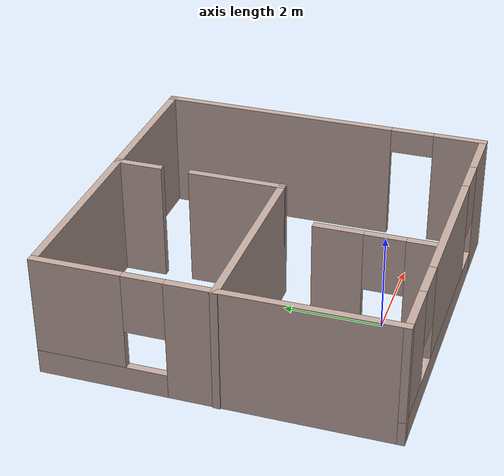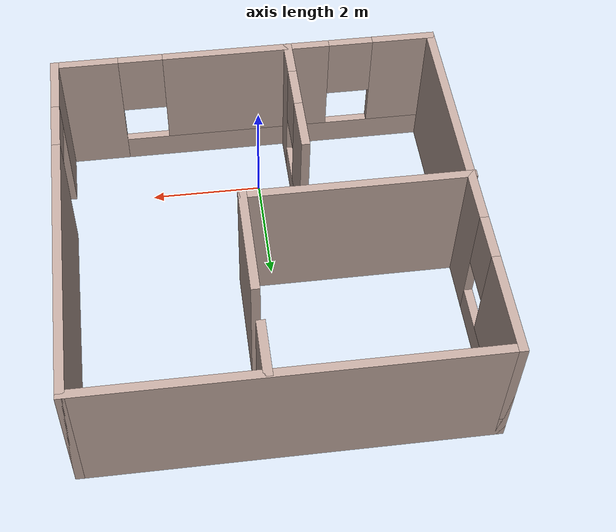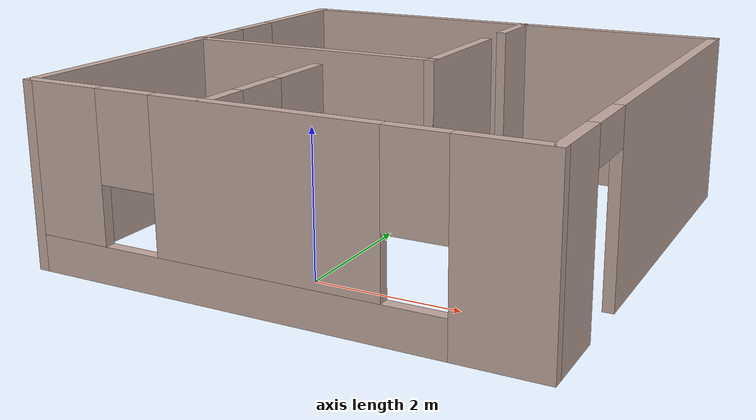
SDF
<?xml version='1.0'?>
<sdf version='1.7'>
  <model name='building'>
    <pose>0.102659 2.245 0 0 -0 0</pose>
    <link name='Wall_0'>
      <pose>-3.41266 0 0 0 -0 1.5708</pose>
      <visual name='Wall_0_Visual_0'>
        <pose>-1.29082 0 1.25 0 -0 0</pose>
        <geometry>
          <box>
            <size>4.41836 0.15 2.5</size>
          </box>
        </geometry>
        <material>
          <script>
            <uri>file://media/materials/scripts/gazebo.material</uri>
            <name>Gazebo/Grey</name>
          </script>
          <ambient>0.760784 0.662745 0.627451 1</ambient>
        </material>
        <meta>
          <layer>0</layer>
        </meta>
      </visual>
      <collision name='Wall_0_Collision_0'>
        <geometry>
          <box>
            <size>4.41836 0.15 2.5</size>
          </box>
        </geometry>
        <pose>-1.29082 0 1.25 0 -0 0</pose>
      </collision>
      <visual name='Wall_0_Visual_1'>
        <pose>2.20918 0 0.25 0 -0 0</pose>
        <geometry>
          <box>
            <size>2.58164 0.15 0.5</size>
          </box>
        </geometry>
        <material>
          <script>
            <uri>file://media/materials/scripts/gazebo.material</uri>
            <name>Gazebo/Grey</name>
          </script>
          <ambient>0.760784 0.662745 0.627451 1</ambient>
        </material>
        <meta>
          <layer>0</layer>
        </meta>
      </visual>
      <collision name='Wall_0_Collision_1'>
        <geometry>
          <box>
            <size>2.58164 0.15 0.5</size>
          </box>
        </geometry>
        <pose>2.20918 0 0.25 0 -0 0</pose>
      </collision>
      <visual name='Wall_0_Visual_2'>
        <pose>2.60918 0 1.5 0 -0 0</pose>
        <geometry>
          <box>
            <size>1.78164 0.15 2</size>
          </box>
        </geometry>
        <material>
          <script>
            <uri>file://media/materials/scripts/gazebo.material</uri>
            <name>Gazebo/Grey</name>
          </script>
          <ambient>0.760784 0.662745 0.627451 1</ambient>
        </material>
        <meta>
          <layer>0</layer>
        </meta>
      </visual>
      <collision name='Wall_0_Collision_2'>
        <geometry>
          <box>
            <size>1.78164 0.15 2</size>
          </box>
        </geometry>
        <pose>2.60918 0 1.5 0 -0 0</pose>
      </collision>
      <visual name='Wall_0_Visual_3'>
        <pose>1.31836 0 1.9 0 -0 0</pose>
        <geometry>
          <box>
            <size>0.8 0.15 1.2</size>
          </box>
        </geometry>
        <material>
          <script>
            <uri>file://media/materials/scripts/gazebo.material</uri>
            <name>Gazebo/Grey</name>
          </script>
          <ambient>0.760784 0.662745 0.627451 1</ambient>
        </material>
        <meta>
          <layer>0</layer>
        </meta>
      </visual>
      <collision name='Wall_0_Collision_3'>
        <geometry>
          <box>
            <size>0.8 0.15 1.2</size>
          </box>
        </geometry>
        <pose>1.31836 0 1.9 0 -0 0</pose>
      </collision>
    </link>
    <link name='Wall_1'>
      <collision name='Wall_1_Collision'>
        <geometry>
          <box>
            <size>7 0.15 2.5</size>
          </box>
        </geometry>
        <pose>0 0 1.25 0 -0 0</pose>
      </collision>
      <visual name='Wall_1_Visual'>
        <pose>0 0 1.25 0 -0 0</pose>
        <geometry>
          <box>
            <size>7 0.15 2.5</size>
          </box>
        </geometry>
        <material>
          <script>
            <uri>file://media/materials/scripts/gazebo.material</uri>
            <name>Gazebo/Grey</name>
          </script>
          <ambient>0.760784 0.662745 0.627451 1</ambient>
        </material>
        <meta>
          <layer>0</layer>
        </meta>
      </visual>
      <pose>0.012341 3.425 0 0 -0 0</pose>
    </link>
    <link name='Wall_10'>
      <collision name='Wall_10_Collision'>
        <geometry>
          <box>
            <size>1 0.15 2.5</size>
          </box>
        </geometry>
        <pose>0 0 1.25 0 -0 0</pose>
      </collision>
      <visual name='Wall_10_Visual'>
        <pose>0 0 1.25 0 -0 0</pose>
        <geometry>
          <box>
            <size>1 0.15 2.5</size>
          </box>
        </geometry>
        <material>
          <script>
            <uri>file://media/materials/scripts/gazebo.material</uri>
            <name>Gazebo/Grey</name>
          </script>
          <ambient>0.760784 0.662745 0.627451 1</ambient>
        </material>
        <meta>
          <layer>0</layer>
        </meta>
      </visual>
      <pose>0.40234 2.97511 0 0 -0 -1.5708</pose>
    </link>
    <link name='Wall_12'>
      <pose>-0.777321 -2.24842 0 0 -0 1.5708</pose>
      <visual name='Wall_12_Visual_0'>
        <pose>-0.892061 0 1.25 0 -0 0</pose>
        <geometry>
          <box>
            <size>0.715877 0.15 2.5</size>
          </box>
        </geometry>
        <material>
          <script>
            <uri>file://media/materials/scripts/gazebo.material</uri>
            <name>Gazebo/Grey</name>
          </script>
          <ambient>0.760784 0.662745 0.627451 1</ambient>
        </material>
        <meta>
          <layer>0</layer>
        </meta>
      </visual>
      <collision name='Wall_12_Collision_0'>
        <geometry>
          <box>
            <size>0.715877 0.15 2.5</size>
          </box>
        </geometry>
        <pose>-0.892061 0 1.25 0 -0 0</pose>
      </collision>
      <visual name='Wall_12_Visual_1'>
        <pose>0.357939 0 0.25 0 -0 0</pose>
        <geometry>
          <box>
            <size>1.78412 0.15 0.5</size>
          </box>
        </geometry>
        <material>
          <script>
            <uri>file://media/materials/scripts/gazebo.material</uri>
            <name>Gazebo/Grey</name>
          </script>
          <ambient>0.760784 0.662745 0.627451 1</ambient>
        </material>
        <meta>
          <layer>0</layer>
        </meta>
      </visual>
      <collision name='Wall_12_Collision_1'>
        <geometry>
          <box>
            <size>1.78412 0.15 0.5</size>
          </box>
        </geometry>
        <pose>0.357939 0 0.25 0 -0 0</pose>
      </collision>
      <visual name='Wall_12_Visual_2'>
        <pose>0.757939 0 1.5 0 -0 0</pose>
        <geometry>
          <box>
            <size>0.984123 0.15 2</size>
          </box>
        </geometry>
        <material>
          <script>
            <uri>file://media/materials/scripts/gazebo.material</uri>
            <name>Gazebo/Grey</name>
          </script>
          <ambient>0.760784 0.662745 0.627451 1</ambient>
        </material>
        <meta>
          <layer>0</layer>
        </meta>
      </visual>
      <collision name='Wall_12_Collision_2'>
        <geometry>
          <box>
            <size>0.984123 0.15 2</size>
          </box>
        </geometry>
        <pose>0.757939 0 1.5 0 -0 0</pose>
      </collision>
      <visual name='Wall_12_Visual_3'>
        <pose>-0.134123 0 1.9 0 -0 0</pose>
        <geometry>
          <box>
            <size>0.8 0.15 1.2</size>
          </box>
        </geometry>
        <material>
          <script>
            <uri>file://media/materials/scripts/gazebo.material</uri>
            <name>Gazebo/Grey</name>
          </script>
          <ambient>0.760784 0.662745 0.627451 1</ambient>
        </material>
        <meta>
          <layer>0</layer>
        </meta>
      </visual>
      <collision name='Wall_12_Collision_3'>
        <geometry>
          <box>
            <size>0.8 0.15 1.2</size>
          </box>
        </geometry>
        <pose>-0.134123 0 1.9 0 -0 0</pose>
      </collision>
    </link>
    <link name='Wall_2'>
      <pose>3.43734 0 0 0 -0 -1.5708</pose>
      <visual name='Wall_2_Visual_0'>
        <pose>-1.00347 0 1.25 0 -0 0</pose>
        <geometry>
          <box>
            <size>4.99306 0.15 2.5</size>
          </box>
        </geometry>
        <material>
          <script>
            <uri>file://media/materials/scripts/gazebo.material</uri>
            <name>Gazebo/Grey</name>
          </script>
          <ambient>0.760784 0.662745 0.627451 1</ambient>
        </material>
        <meta>
          <layer>0</layer>
        </meta>
      </visual>
      <collision name='Wall_2_Collision_0'>
        <geometry>
          <box>
            <size>4.99306 0.15 2.5</size>
          </box>
        </geometry>
        <pose>-1.00347 0 1.25 0 -0 0</pose>
      </collision>
      <visual name='Wall_2_Visual_1'>
        <pose>2.94653 0 1.25 0 -0 0</pose>
        <geometry>
          <box>
            <size>1.10694 0.15 2.5</size>
          </box>
        </geometry>
        <material>
          <script>
            <uri>file://media/materials/scripts/gazebo.material</uri>
            <name>Gazebo/Grey</name>
          </script>
          <ambient>0.760784 0.662745 0.627451 1</ambient>
        </material>
        <meta>
          <layer>0</layer>
        </meta>
      </visual>
      <collision name='Wall_2_Collision_1'>
        <geometry>
          <box>
            <size>1.10694 0.15 2.5</size>
          </box>
        </geometry>
        <pose>2.94653 0 1.25 0 -0 0</pose>
      </collision>
      <visual name='Wall_2_Visual_2'>
        <pose>1.94306 0 2.25 0 -0 0</pose>
        <geometry>
          <box>
            <size>0.9 0.15 0.5</size>
          </box>
        </geometry>
        <material>
          <script>
            <uri>file://media/materials/scripts/gazebo.material</uri>
            <name>Gazebo/Grey</name>
          </script>
          <ambient>0.760784 0.662745 0.627451 1</ambient>
        </material>
        <meta>
          <layer>0</layer>
        </meta>
      </visual>
      <collision name='Wall_2_Collision_2'>
        <geometry>
          <box>
            <size>0.9 0.15 0.5</size>
          </box>
        </geometry>
        <pose>1.94306 0 2.25 0 -0 0</pose>
      </collision>
    </link>
    <link name='Wall_3'>
      <pose>0.012341 -3.425 0 0 -0 3.14159</pose>
      <visual name='Wall_3_Visual_0'>
        <pose>-2.89674 0 1.25 0 -0 0</pose>
        <geometry>
          <box>
            <size>1.20651 0.15 2.5</size>
          </box>
        </geometry>
        <material>
          <script>
            <uri>file://media/materials/scripts/gazebo.material</uri>
            <name>Gazebo/Grey</name>
          </script>
          <ambient>0.760784 0.662745 0.627451 1</ambient>
        </material>
        <meta>
          <layer>0</layer>
        </meta>
      </visual>
      <collision name='Wall_3_Collision_0'>
        <geometry>
          <box>
            <size>1.20651 0.15 2.5</size>
          </box>
        </geometry>
        <pose>-2.89674 0 1.25 0 -0 0</pose>
      </collision>
      <visual name='Wall_3_Visual_1'>
        <pose>0.603256 0 0.25 0 -0 0</pose>
        <geometry>
          <box>
            <size>5.79349 0.15 0.5</size>
          </box>
        </geometry>
        <material>
          <script>
            <uri>file://media/materials/scripts/gazebo.material</uri>
            <name>Gazebo/Grey</name>
          </script>
          <ambient>0.760784 0.662745 0.627451 1</ambient>
        </material>
        <meta>
          <layer>0</layer>
        </meta>
      </visual>
      <collision name='Wall_3_Collision_1'>
        <geometry>
          <box>
            <size>5.79349 0.15 0.5</size>
          </box>
        </geometry>
        <pose>0.603256 0 0.25 0 -0 0</pose>
      </collision>
      <visual name='Wall_3_Visual_2'>
        <pose>0.026352 0 1.5 0 -0 0</pose>
        <geometry>
          <box>
            <size>3.03968 0.15 2</size>
          </box>
        </geometry>
        <material>
          <script>
            <uri>file://media/materials/scripts/gazebo.material</uri>
            <name>Gazebo/Grey</name>
          </script>
          <ambient>0.760784 0.662745 0.627451 1</ambient>
        </material>
        <meta>
          <layer>0</layer>
        </meta>
      </visual>
      <collision name='Wall_3_Collision_2'>
        <geometry>
          <box>
            <size>3.03968 0.15 2</size>
          </box>
        </geometry>
        <pose>0.026352 0 1.5 0 -0 0</pose>
      </collision>
      <visual name='Wall_3_Visual_3'>
        <pose>2.9231 0 1.5 0 -0 0</pose>
        <geometry>
          <box>
            <size>1.15381 0.15 2</size>
          </box>
        </geometry>
        <material>
          <script>
            <uri>file://media/materials/scripts/gazebo.material</uri>
            <name>Gazebo/Grey</name>
          </script>
          <ambient>0.760784 0.662745 0.627451 1</ambient>
        </material>
        <meta>
          <layer>0</layer>
        </meta>
      </visual>
      <collision name='Wall_3_Collision_3'>
        <geometry>
          <box>
            <size>1.15381 0.15 2</size>
          </box>
        </geometry>
        <pose>2.9231 0 1.5 0 -0 0</pose>
      </collision>
      <visual name='Wall_3_Visual_4'>
        <pose>-1.89349 0 1.9 0 -0 0</pose>
        <geometry>
          <box>
            <size>0.8 0.15 1.2</size>
          </box>
        </geometry>
        <material>
          <script>
            <uri>file://media/materials/scripts/gazebo.material</uri>
            <name>Gazebo/Grey</name>
          </script>
          <ambient>0.760784 0.662745 0.627451 1</ambient>
        </material>
        <meta>
          <layer>0</layer>
        </meta>
      </visual>
      <collision name='Wall_3_Collision_4'>
        <geometry>
          <box>
            <size>0.8 0.15 1.2</size>
          </box>
        </geometry>
        <pose>-1.89349 0 1.9 0 -0 0</pose>
      </collision>
      <visual name='Wall_3_Visual_5'>
        <pose>1.94619 0 1.9 0 -0 0</pose>
        <geometry>
          <box>
            <size>0.8 0.15 1.2</size>
          </box>
        </geometry>
        <material>
          <script>
            <uri>file://media/materials/scripts/gazebo.material</uri>
            <name>Gazebo/Grey</name>
          </script>
          <ambient>0.760784 0.662745 0.627451 1</ambient>
        </material>
        <meta>
          <layer>0</layer>
        </meta>
      </visual>
      <collision name='Wall_3_Collision_5'>
        <geometry>
          <box>
            <size>0.8 0.15 1.2</size>
          </box>
        </geometry>
        <pose>1.94619 0 1.9 0 -0 0</pose>
      </collision>
    </link>
    <link name='Wall_5'>
      <collision name='Wall_5_Collision'>
        <geometry>
          <box>
            <size>4 0.15 2.5</size>
          </box>
        </geometry>
        <pose>0 0 1.25 0 -0 0</pose>
      </collision>
      <visual name='Wall_5_Visual'>
        <pose>0 0 1.25 0 -0 0</pose>
        <geometry>
          <box>
            <size>4 0.15 2.5</size>
          </box>
        </geometry>
        <material>
          <script>
            <uri>file://media/materials/scripts/gazebo.material</uri>
            <name>Gazebo/Grey</name>
          </script>
          <ambient>0.760784 0.662745 0.627451 1</ambient>
        </material>
        <meta>
          <layer>0</layer>
        </meta>
      </visual>
      <pose>-1.51234 -0.02322 0 0 -0 0</pose>
    </link>
    <link name='Wall_8'>
      <collision name='Wall_8_Collision'>
        <geometry>
          <box>
            <size>2 0.15 2.5</size>
          </box>
        </geometry>
        <pose>0 0 1.25 0 -0 0</pose>
      </collision>
      <visual name='Wall_8_Visual'>
        <pose>0 0 1.25 0 -0 0</pose>
        <geometry>
          <box>
            <size>2 0.15 2.5</size>
          </box>
        </geometry>
        <material>
          <script>
            <uri>file://media/materials/scripts/gazebo.material</uri>
            <name>Gazebo/Grey</name>
          </script>
          <ambient>0.760784 0.662745 0.627451 1</ambient>
        </material>
        <meta>
          <layer>0</layer>
        </meta>
      </visual>
      <pose>0.412659 0.90178 0 0 -0 1.5708</pose>
    </link>
    <static>1</static>
  </model>
</sdf>
